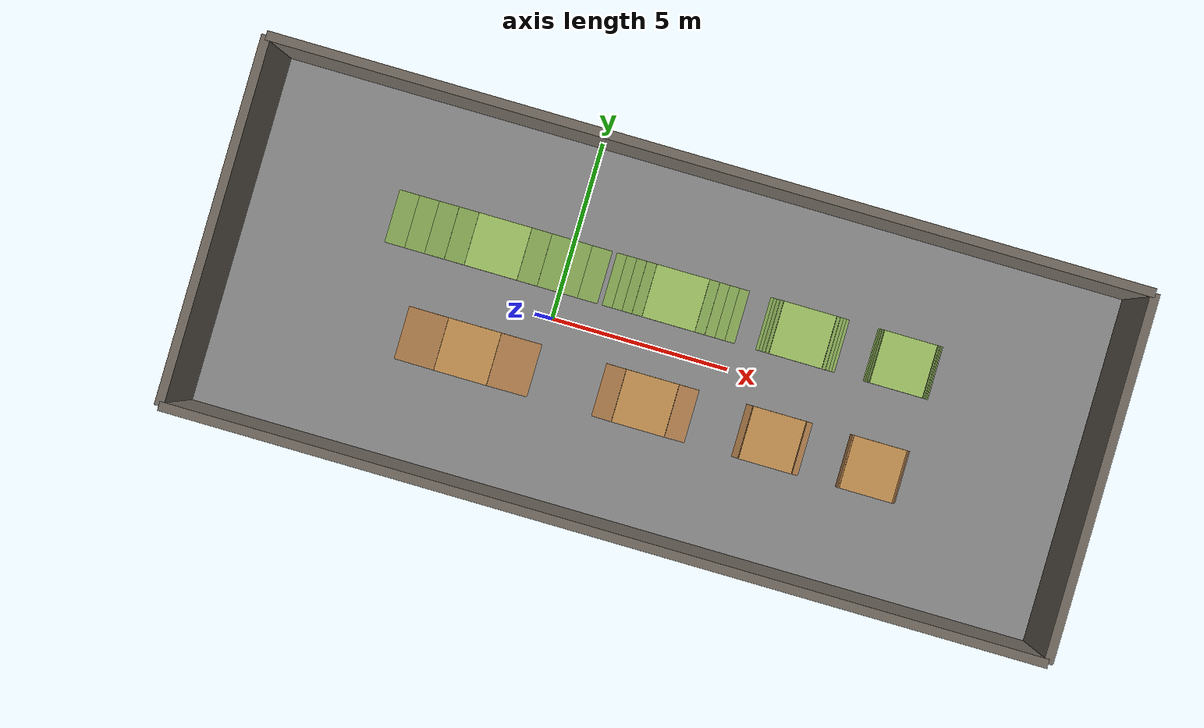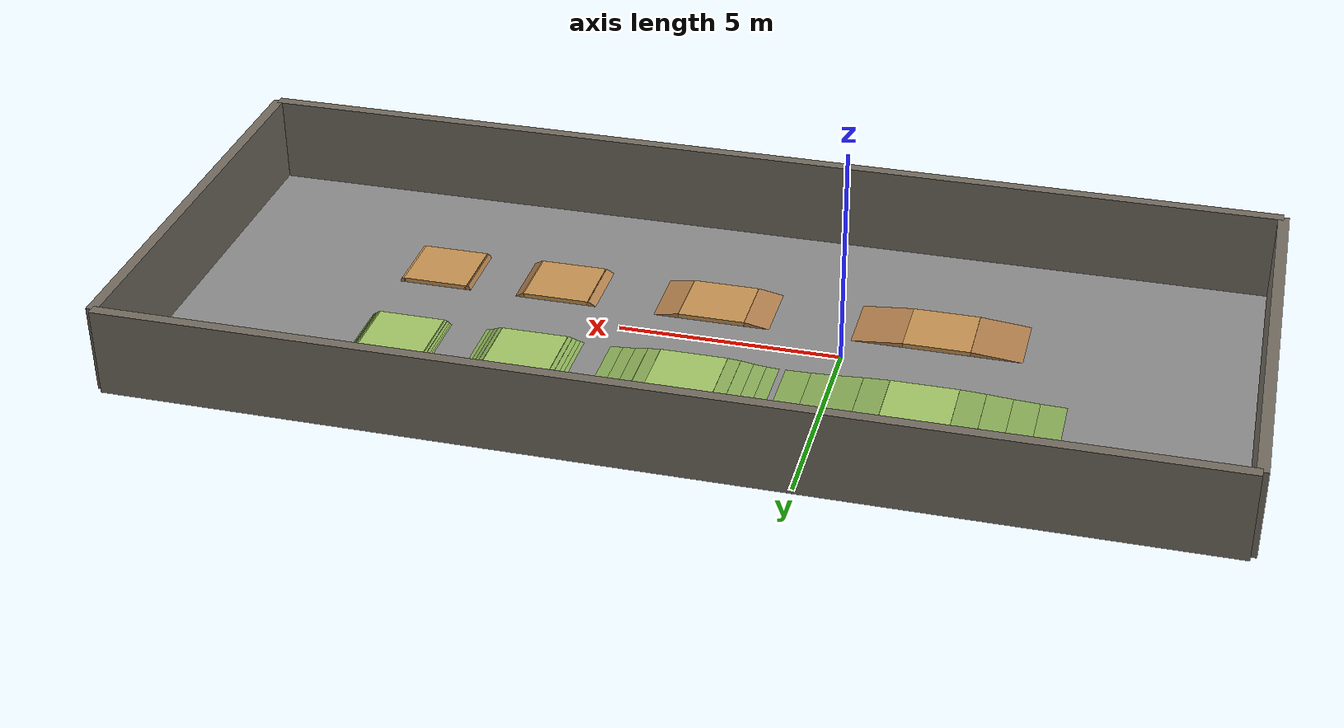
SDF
<?xml version="1.0" ?>
<sdf version="1.6">
  <world name="hill_placement">
    <gravity>0 0 -9.80511</gravity>
    <magnetic_field>6.0e-6 2.3e-5 -4.2e-5</magnetic_field>
    <atmosphere type="adiabatic" />
    <!-- /clock の更新粒度を上げるため、physics step を 1ms 基準に固定する。 -->
    <physics type="ode">
      <real_time_update_rate>1000</real_time_update_rate>
      <max_step_size>0.001</max_step_size>
      <real_time_factor>1.0</real_time_factor>
    </physics>

    <light name="sun" type="directional">
      <cast_shadows>true</cast_shadows>
      <pose>0 0 10 0 0 0</pose>
      <diffuse>0.8 0.8 0.8 1</diffuse>
      <specular>0.2 0.2 0.2 1</specular>
      <attenuation>
        <range>1000</range>
        <constant>0.9</constant>
        <linear>0.01</linear>
        <quadratic>0.001</quadratic>
      </attenuation>
      <direction>-0.5 0.1 -0.9</direction>
    </light>

    <model name="flat_floor">
      <static>true</static>
      <!-- 8個の丘を前方へ並べられるよう、既存worldよりX方向を広くした平坦床を用意する。 -->
      <link name="link">
        <collision name="collision">
          <pose>3.0 0 -0.01 0 0 0</pose>
          <geometry>
            <box><size>24.0 10.0 0.02</size></box>
          </geometry>
        </collision>
        <visual name="visual">
          <pose>3.0 0 -0.01 0 0 0</pose>
          <geometry>
            <box><size>24.0 10.0 0.02</size></box>
          </geometry>
          <material>
            <ambient>0.30 0.30 0.30 1</ambient>
            <diffuse>0.55 0.55 0.55 1</diffuse>
          </material>
        </visual>
      </link>
    </model>

    <model name="hill_constant_5deg">
      <static>true</static>
      <pose>-1.9742 -1.5 0 0 0 0</pose>
      <!-- 5度の一定勾配丘は厚みを持つ傾斜直方体で側面を兼ね、上面高さ10cmを維持する。 -->
      <link name="up_slope"><pose>-1.3215 0 0.0002 0 -0.087266 0</pose><collision name="collision"><geometry><box><size>1.1474 1.50 0.10</size></box></geometry></collision><visual name="visual"><geometry><box><size>1.1474 1.50 0.10</size></box></geometry><material><ambient>0.42 0.30 0.18 1</ambient><diffuse>0.70 0.50 0.30 1</diffuse></material></visual></link>
      <link name="top"><pose>0.0000 0 0.0500 0 0.000000 0</pose><collision name="collision"><geometry><box><size>1.5000 1.50 0.10</size></box></geometry></collision><visual name="visual"><geometry><box><size>1.5000 1.50 0.10</size></box></geometry><material><ambient>0.48 0.36 0.20 1</ambient><diffuse>0.78 0.58 0.32 1</diffuse></material></visual></link>
      <link name="down_slope"><pose>1.3215 0 0.0002 0 0.087266 0</pose><collision name="collision"><geometry><box><size>1.1474 1.50 0.10</size></box></geometry></collision><visual name="visual"><geometry><box><size>1.1474 1.50 0.10</size></box></geometry><material><ambient>0.42 0.30 0.18 1</ambient><diffuse>0.70 0.50 0.30 1</diffuse></material></visual></link>
    </model>

    <model name="hill_smooth_5deg">
      <static>true</static>
      <pose>-1.9742 1.5 0 0 0 0</pose>
      <!-- 5度のなだらか接続丘は厚みを持つ分割傾斜直方体で接地側と上面側の勾配を緩和する。 -->
      <link name="up_slope_low"><pose>-2.7536 0 -0.0437 0 -0.021817 0</pose><collision name="collision"><geometry><box><size>0.5726 1.50 0.10</size></box></geometry></collision><visual name="visual"><geometry><box><size>0.5726 1.50 0.10</size></box></geometry><material><ambient>0.34 0.42 0.20 1</ambient><diffuse>0.54 0.68 0.34 1</diffuse></material></visual></link>
      <link name="up_slope_mid"><pose>-2.1811 0 -0.0250 0 -0.043633 0</pose><collision name="collision"><geometry><box><size>0.5730 1.50 0.10</size></box></geometry></collision><visual name="visual"><geometry><box><size>0.5730 1.50 0.10</size></box></geometry><material><ambient>0.34 0.42 0.20 1</ambient><diffuse>0.54 0.68 0.34 1</diffuse></material></visual></link>
      <link name="up_slope_high"><pose>-1.6087 0 0.0064 0 -0.065450 0</pose><collision name="collision"><geometry><box><size>0.5737 1.50 0.10</size></box></geometry></collision><visual name="visual"><geometry><box><size>0.5737 1.50 0.10</size></box></geometry><material><ambient>0.34 0.42 0.20 1</ambient><diffuse>0.54 0.68 0.34 1</diffuse></material></visual></link>
      <link name="up_slope_top"><pose>-1.0362 0 0.0376 0 -0.043633 0</pose><collision name="collision"><geometry><box><size>0.5730 1.50 0.10</size></box></geometry></collision><visual name="visual"><geometry><box><size>0.5730 1.50 0.10</size></box></geometry><material><ambient>0.34 0.42 0.20 1</ambient><diffuse>0.54 0.68 0.34 1</diffuse></material></visual></link>
      <link name="top"><pose>0.0000 0 0.0500 0 0.000000 0</pose><collision name="collision"><geometry><box><size>1.5000 1.50 0.10</size></box></geometry></collision><visual name="visual"><geometry><box><size>1.5000 1.50 0.10</size></box></geometry><material><ambient>0.40 0.50 0.24 1</ambient><diffuse>0.64 0.78 0.40 1</diffuse></material></visual></link>
      <link name="down_slope_top"><pose>1.0362 0 0.0376 0 0.043633 0</pose><collision name="collision"><geometry><box><size>0.5730 1.50 0.10</size></box></geometry></collision><visual name="visual"><geometry><box><size>0.5730 1.50 0.10</size></box></geometry><material><ambient>0.34 0.42 0.20 1</ambient><diffuse>0.54 0.68 0.34 1</diffuse></material></visual></link>
      <link name="down_slope_high"><pose>1.6087 0 0.0064 0 0.065450 0</pose><collision name="collision"><geometry><box><size>0.5737 1.50 0.10</size></box></geometry></collision><visual name="visual"><geometry><box><size>0.5737 1.50 0.10</size></box></geometry><material><ambient>0.34 0.42 0.20 1</ambient><diffuse>0.54 0.68 0.34 1</diffuse></material></visual></link>
      <link name="down_slope_mid"><pose>2.1811 0 -0.0250 0 0.043633 0</pose><collision name="collision"><geometry><box><size>0.5730 1.50 0.10</size></box></geometry></collision><visual name="visual"><geometry><box><size>0.5730 1.50 0.10</size></box></geometry><material><ambient>0.34 0.42 0.20 1</ambient><diffuse>0.54 0.68 0.34 1</diffuse></material></visual></link>
      <link name="down_slope_low"><pose>2.7536 0 -0.0437 0 0.021817 0</pose><collision name="collision"><geometry><box><size>0.5726 1.50 0.10</size></box></geometry></collision><visual name="visual"><geometry><box><size>0.5726 1.50 0.10</size></box></geometry><material><ambient>0.34 0.42 0.20 1</ambient><diffuse>0.54 0.68 0.34 1</diffuse></material></visual></link>
    </model>

    <model name="hill_constant_10deg">
      <static>true</static>
      <pose>3.0954 -1.5 0 0 0 0</pose>
      <!-- 10度の一定勾配丘は厚みを持つ傾斜直方体で側面を兼ね、上面高さ10cmを維持する。 -->
      <link name="up_slope"><pose>-1.0336 0 0.0008 0 -0.174533 0</pose><collision name="collision"><geometry><box><size>0.5759 1.50 0.10</size></box></geometry></collision><visual name="visual"><geometry><box><size>0.5759 1.50 0.10</size></box></geometry><material><ambient>0.42 0.30 0.18 1</ambient><diffuse>0.70 0.50 0.30 1</diffuse></material></visual></link>
      <link name="top"><pose>0.0000 0 0.0500 0 0.000000 0</pose><collision name="collision"><geometry><box><size>1.5000 1.50 0.10</size></box></geometry></collision><visual name="visual"><geometry><box><size>1.5000 1.50 0.10</size></box></geometry><material><ambient>0.48 0.36 0.20 1</ambient><diffuse>0.78 0.58 0.32 1</diffuse></material></visual></link>
      <link name="down_slope"><pose>1.0336 0 0.0008 0 0.174533 0</pose><collision name="collision"><geometry><box><size>0.5759 1.50 0.10</size></box></geometry></collision><visual name="visual"><geometry><box><size>0.5759 1.50 0.10</size></box></geometry><material><ambient>0.42 0.30 0.18 1</ambient><diffuse>0.70 0.50 0.30 1</diffuse></material></visual></link>
    </model>

    <model name="hill_smooth_10deg">
      <static>true</static>
      <pose>3.0954 1.5 0 0 0 0</pose>
      <!-- 10度のなだらか接続丘は厚みを持つ分割傾斜直方体で接地側と上面側の勾配を緩和する。 -->
      <link name="up_slope_low"><pose>-1.7492 0 -0.0437 0 -0.043633 0</pose><collision name="collision"><geometry><box><size>0.2857 1.50 0.10</size></box></geometry></collision><visual name="visual"><geometry><box><size>0.2857 1.50 0.10</size></box></geometry><material><ambient>0.34 0.42 0.20 1</ambient><diffuse>0.54 0.68 0.34 1</diffuse></material></visual></link>
      <link name="up_slope_mid"><pose>-1.4637 0 -0.0249 0 -0.087266 0</pose><collision name="collision"><geometry><box><size>0.2866 1.50 0.10</size></box></geometry></collision><visual name="visual"><geometry><box><size>0.2866 1.50 0.10</size></box></geometry><material><ambient>0.34 0.42 0.20 1</ambient><diffuse>0.54 0.68 0.34 1</diffuse></material></visual></link>
      <link name="up_slope_high"><pose>-1.1782 0 0.0067 0 -0.130900 0</pose><collision name="collision"><geometry><box><size>0.2879 1.50 0.10</size></box></geometry></collision><visual name="visual"><geometry><box><size>0.2879 1.50 0.10</size></box></geometry><material><ambient>0.34 0.42 0.20 1</ambient><diffuse>0.54 0.68 0.34 1</diffuse></material></visual></link>
      <link name="up_slope_top"><pose>-0.8927 0 0.0377 0 -0.087266 0</pose><collision name="collision"><geometry><box><size>0.2866 1.50 0.10</size></box></geometry></collision><visual name="visual"><geometry><box><size>0.2866 1.50 0.10</size></box></geometry><material><ambient>0.34 0.42 0.20 1</ambient><diffuse>0.54 0.68 0.34 1</diffuse></material></visual></link>
      <link name="top"><pose>0.0000 0 0.0500 0 0.000000 0</pose><collision name="collision"><geometry><box><size>1.5000 1.50 0.10</size></box></geometry></collision><visual name="visual"><geometry><box><size>1.5000 1.50 0.10</size></box></geometry><material><ambient>0.40 0.50 0.24 1</ambient><diffuse>0.64 0.78 0.40 1</diffuse></material></visual></link>
      <link name="down_slope_top"><pose>0.8927 0 0.0377 0 0.087266 0</pose><collision name="collision"><geometry><box><size>0.2866 1.50 0.10</size></box></geometry></collision><visual name="visual"><geometry><box><size>0.2866 1.50 0.10</size></box></geometry><material><ambient>0.34 0.42 0.20 1</ambient><diffuse>0.54 0.68 0.34 1</diffuse></material></visual></link>
      <link name="down_slope_high"><pose>1.1782 0 0.0067 0 0.130900 0</pose><collision name="collision"><geometry><box><size>0.2879 1.50 0.10</size></box></geometry></collision><visual name="visual"><geometry><box><size>0.2879 1.50 0.10</size></box></geometry><material><ambient>0.34 0.42 0.20 1</ambient><diffuse>0.54 0.68 0.34 1</diffuse></material></visual></link>
      <link name="down_slope_mid"><pose>1.4637 0 -0.0249 0 0.087266 0</pose><collision name="collision"><geometry><box><size>0.2866 1.50 0.10</size></box></geometry></collision><visual name="visual"><geometry><box><size>0.2866 1.50 0.10</size></box></geometry><material><ambient>0.34 0.42 0.20 1</ambient><diffuse>0.54 0.68 0.34 1</diffuse></material></visual></link>
      <link name="down_slope_low"><pose>1.7492 0 -0.0437 0 0.043633 0</pose><collision name="collision"><geometry><box><size>0.2857 1.50 0.10</size></box></geometry></collision><visual name="visual"><geometry><box><size>0.2857 1.50 0.10</size></box></geometry><material><ambient>0.34 0.42 0.20 1</ambient><diffuse>0.54 0.68 0.34 1</diffuse></material></visual></link>
    </model>

    <model name="hill_constant_30deg">
      <static>true</static>
      <pose>6.7174 -1.5 0 0 0 0</pose>
      <!-- 30度の一定勾配丘は厚みを持つ傾斜直方体で側面を兼ね、上面高さ10cmを維持する。 -->
      <link name="up_slope"><pose>-0.8366 0 0.0067 0 -0.523599 0</pose><collision name="collision"><geometry><box><size>0.2000 1.50 0.10</size></box></geometry></collision><visual name="visual"><geometry><box><size>0.2000 1.50 0.10</size></box></geometry><material><ambient>0.42 0.30 0.18 1</ambient><diffuse>0.70 0.50 0.30 1</diffuse></material></visual></link>
      <link name="top"><pose>0.0000 0 0.0500 0 0.000000 0</pose><collision name="collision"><geometry><box><size>1.5000 1.50 0.10</size></box></geometry></collision><visual name="visual"><geometry><box><size>1.5000 1.50 0.10</size></box></geometry><material><ambient>0.48 0.36 0.20 1</ambient><diffuse>0.78 0.58 0.32 1</diffuse></material></visual></link>
      <link name="down_slope"><pose>0.8366 0 0.0067 0 0.523599 0</pose><collision name="collision"><geometry><box><size>0.2000 1.50 0.10</size></box></geometry></collision><visual name="visual"><geometry><box><size>0.2000 1.50 0.10</size></box></geometry><material><ambient>0.42 0.30 0.18 1</ambient><diffuse>0.70 0.50 0.30 1</diffuse></material></visual></link>
    </model>

    <model name="hill_smooth_30deg">
      <static>true</static>
      <pose>6.7174 1.5 0 0 0 0</pose>
      <!-- 30度のなだらか接続丘は厚みを持つ分割傾斜直方体で接地側と上面側の勾配を緩和する。 -->
      <link name="up_slope_low"><pose>-1.0735 0 -0.0435 0 -0.130900 0</pose><collision name="collision"><geometry><box><size>0.0932 1.50 0.10</size></box></geometry></collision><visual name="visual"><geometry><box><size>0.0932 1.50 0.10</size></box></geometry><material><ambient>0.34 0.42 0.20 1</ambient><diffuse>0.54 0.68 0.34 1</diffuse></material></visual></link>
      <link name="up_slope_mid"><pose>-0.9811 0 -0.0237 0 -0.261799 0</pose><collision name="collision"><geometry><box><size>0.0957 1.50 0.10</size></box></geometry></collision><visual name="visual"><geometry><box><size>0.0957 1.50 0.10</size></box></geometry><material><ambient>0.34 0.42 0.20 1</ambient><diffuse>0.54 0.68 0.34 1</diffuse></material></visual></link>
      <link name="up_slope_high"><pose>-0.8887 0 0.0099 0 -0.392699 0</pose><collision name="collision"><geometry><box><size>0.1001 1.50 0.10</size></box></geometry></collision><visual name="visual"><geometry><box><size>0.1001 1.50 0.10</size></box></geometry><material><ambient>0.34 0.42 0.20 1</ambient><diffuse>0.54 0.68 0.34 1</diffuse></material></visual></link>
      <link name="up_slope_top"><pose>-0.7962 0 0.0393 0 -0.261799 0</pose><collision name="collision"><geometry><box><size>0.0957 1.50 0.10</size></box></geometry></collision><visual name="visual"><geometry><box><size>0.0957 1.50 0.10</size></box></geometry><material><ambient>0.34 0.42 0.20 1</ambient><diffuse>0.54 0.68 0.34 1</diffuse></material></visual></link>
      <link name="top"><pose>0.0000 0 0.0500 0 0.000000 0</pose><collision name="collision"><geometry><box><size>1.5000 1.50 0.10</size></box></geometry></collision><visual name="visual"><geometry><box><size>1.5000 1.50 0.10</size></box></geometry><material><ambient>0.40 0.50 0.24 1</ambient><diffuse>0.64 0.78 0.40 1</diffuse></material></visual></link>
      <link name="down_slope_top"><pose>0.7962 0 0.0393 0 0.261799 0</pose><collision name="collision"><geometry><box><size>0.0957 1.50 0.10</size></box></geometry></collision><visual name="visual"><geometry><box><size>0.0957 1.50 0.10</size></box></geometry><material><ambient>0.34 0.42 0.20 1</ambient><diffuse>0.54 0.68 0.34 1</diffuse></material></visual></link>
      <link name="down_slope_high"><pose>0.8887 0 0.0099 0 0.392699 0</pose><collision name="collision"><geometry><box><size>0.1001 1.50 0.10</size></box></geometry></collision><visual name="visual"><geometry><box><size>0.1001 1.50 0.10</size></box></geometry><material><ambient>0.34 0.42 0.20 1</ambient><diffuse>0.54 0.68 0.34 1</diffuse></material></visual></link>
      <link name="down_slope_mid"><pose>0.9811 0 -0.0237 0 0.261799 0</pose><collision name="collision"><geometry><box><size>0.0957 1.50 0.10</size></box></geometry></collision><visual name="visual"><geometry><box><size>0.0957 1.50 0.10</size></box></geometry><material><ambient>0.34 0.42 0.20 1</ambient><diffuse>0.54 0.68 0.34 1</diffuse></material></visual></link>
      <link name="down_slope_low"><pose>1.0735 0 -0.0435 0 0.130900 0</pose><collision name="collision"><geometry><box><size>0.0932 1.50 0.10</size></box></geometry></collision><visual name="visual"><geometry><box><size>0.0932 1.50 0.10</size></box></geometry><material><ambient>0.34 0.42 0.20 1</ambient><diffuse>0.54 0.68 0.34 1</diffuse></material></visual></link>
    </model>

    <model name="hill_constant_60deg">
      <static>true</static>
      <pose>9.588 -1.5 0 0 0 0</pose>
      <!-- 60度の一定勾配丘は厚みを持つ傾斜直方体で側面を兼ね、上面高さ10cmを維持する。 -->
      <link name="up_slope"><pose>-0.7789 0 0.0250 0 -1.047198 0</pose><collision name="collision"><geometry><box><size>0.1155 1.50 0.10</size></box></geometry></collision><visual name="visual"><geometry><box><size>0.1155 1.50 0.10</size></box></geometry><material><ambient>0.42 0.30 0.18 1</ambient><diffuse>0.70 0.50 0.30 1</diffuse></material></visual></link>
      <link name="top"><pose>0.0000 0 0.0500 0 0.000000 0</pose><collision name="collision"><geometry><box><size>1.5000 1.50 0.10</size></box></geometry></collision><visual name="visual"><geometry><box><size>1.5000 1.50 0.10</size></box></geometry><material><ambient>0.48 0.36 0.20 1</ambient><diffuse>0.78 0.58 0.32 1</diffuse></material></visual></link>
      <link name="down_slope"><pose>0.7789 0 0.0250 0 1.047198 0</pose><collision name="collision"><geometry><box><size>0.1155 1.50 0.10</size></box></geometry></collision><visual name="visual"><geometry><box><size>0.1155 1.50 0.10</size></box></geometry><material><ambient>0.42 0.30 0.18 1</ambient><diffuse>0.70 0.50 0.30 1</diffuse></material></visual></link>
    </model>

    <model name="hill_smooth_60deg">
      <static>true</static>
      <pose>9.588 1.5 0 0 0 0</pose>
      <!-- 60度のなだらか接続丘は厚みを持つ分割傾斜直方体で接地側と上面側の勾配を緩和する。 -->
      <link name="up_slope_low"><pose>-0.8945 0 -0.0428 0 -0.261799 0</pose><collision name="collision"><geometry><box><size>0.0427 1.50 0.10</size></box></geometry></collision><visual name="visual"><geometry><box><size>0.0427 1.50 0.10</size></box></geometry><material><ambient>0.34 0.42 0.20 1</ambient><diffuse>0.54 0.68 0.34 1</diffuse></material></visual></link>
      <link name="up_slope_mid"><pose>-0.8532 0 -0.0203 0 -0.523599 0</pose><collision name="collision"><geometry><box><size>0.0477 1.50 0.10</size></box></geometry></collision><visual name="visual"><geometry><box><size>0.0477 1.50 0.10</size></box></geometry><material><ambient>0.34 0.42 0.20 1</ambient><diffuse>0.54 0.68 0.34 1</diffuse></material></visual></link>
      <link name="up_slope_high"><pose>-0.8119 0 0.0202 0 -0.785398 0</pose><collision name="collision"><geometry><box><size>0.0584 1.50 0.10</size></box></geometry></collision><visual name="visual"><geometry><box><size>0.0584 1.50 0.10</size></box></geometry><material><ambient>0.34 0.42 0.20 1</ambient><diffuse>0.54 0.68 0.34 1</diffuse></material></visual></link>
      <link name="up_slope_top"><pose>-0.7706 0 0.0448 0 -0.523599 0</pose><collision name="collision"><geometry><box><size>0.0477 1.50 0.10</size></box></geometry></collision><visual name="visual"><geometry><box><size>0.0477 1.50 0.10</size></box></geometry><material><ambient>0.34 0.42 0.20 1</ambient><diffuse>0.54 0.68 0.34 1</diffuse></material></visual></link>
      <link name="top"><pose>0.0000 0 0.0500 0 0.000000 0</pose><collision name="collision"><geometry><box><size>1.5000 1.50 0.10</size></box></geometry></collision><visual name="visual"><geometry><box><size>1.5000 1.50 0.10</size></box></geometry><material><ambient>0.40 0.50 0.24 1</ambient><diffuse>0.64 0.78 0.40 1</diffuse></material></visual></link>
      <link name="down_slope_top"><pose>0.7706 0 0.0448 0 0.523599 0</pose><collision name="collision"><geometry><box><size>0.0477 1.50 0.10</size></box></geometry></collision><visual name="visual"><geometry><box><size>0.0477 1.50 0.10</size></box></geometry><material><ambient>0.34 0.42 0.20 1</ambient><diffuse>0.54 0.68 0.34 1</diffuse></material></visual></link>
      <link name="down_slope_high"><pose>0.8119 0 0.0202 0 0.785398 0</pose><collision name="collision"><geometry><box><size>0.0584 1.50 0.10</size></box></geometry></collision><visual name="visual"><geometry><box><size>0.0584 1.50 0.10</size></box></geometry><material><ambient>0.34 0.42 0.20 1</ambient><diffuse>0.54 0.68 0.34 1</diffuse></material></visual></link>
      <link name="down_slope_mid"><pose>0.8532 0 -0.0203 0 0.523599 0</pose><collision name="collision"><geometry><box><size>0.0477 1.50 0.10</size></box></geometry></collision><visual name="visual"><geometry><box><size>0.0477 1.50 0.10</size></box></geometry><material><ambient>0.34 0.42 0.20 1</ambient><diffuse>0.54 0.68 0.34 1</diffuse></material></visual></link>
      <link name="down_slope_low"><pose>0.8945 0 -0.0428 0 0.261799 0</pose><collision name="collision"><geometry><box><size>0.0427 1.50 0.10</size></box></geometry></collision><visual name="visual"><geometry><box><size>0.0427 1.50 0.10</size></box></geometry><material><ambient>0.34 0.42 0.20 1</ambient><diffuse>0.54 0.68 0.34 1</diffuse></material></visual></link>
    </model>

    <model name="dock_wall_north">
      <static>true</static>
      <pose>3.0 5.0 1.0 0 0 0</pose>
      <link name="link">
        <!-- 既存worldと同じ高さ・厚みの外壁で、拡張した床外周を閉じる。 -->
        <collision name="collision"><geometry><box><size>24.0 0.25 2.0</size></box></geometry></collision>
        <visual name="visual"><geometry><box><size>24.0 0.25 2.0</size></box></geometry><material><ambient>0.45 0.42 0.38 1</ambient><diffuse>0.45 0.42 0.38 1</diffuse></material></visual>
      </link>
    </model>

    <model name="dock_wall_south">
      <static>true</static>
      <pose>3.0 -5.0 1.0 0 0 0</pose>
      <link name="link">
        <collision name="collision"><geometry><box><size>24.0 0.25 2.0</size></box></geometry></collision>
        <visual name="visual"><geometry><box><size>24.0 0.25 2.0</size></box></geometry><material><ambient>0.45 0.42 0.38 1</ambient><diffuse>0.45 0.42 0.38 1</diffuse></material></visual>
      </link>
    </model>

    <model name="dock_wall_east">
      <static>true</static>
      <pose>15.0 0 1.0 0 0 0</pose>
      <link name="link">
        <collision name="collision"><geometry><box><size>0.25 10.0 2.0</size></box></geometry></collision>
        <visual name="visual"><geometry><box><size>0.25 10.0 2.0</size></box></geometry><material><ambient>0.45 0.42 0.38 1</ambient><diffuse>0.45 0.42 0.38 1</diffuse></material></visual>
      </link>
    </model>

    <model name="dock_wall_west">
      <static>true</static>
      <pose>-9.0 0 1.0 0 0 0</pose>
      <link name="link">
        <collision name="collision"><geometry><box><size>0.25 10.0 2.0</size></box></geometry></collision>
        <visual name="visual"><geometry><box><size>0.25 10.0 2.0</size></box></geometry><material><ambient>0.45 0.42 0.38 1</ambient><diffuse>0.45 0.42 0.38 1</diffuse></material></visual>
      </link>
    </model>

    <model name="ceiling">
      <static>true</static>
      <pose>3.0 0 2.05 0 0 0</pose>
      <link name="link">
        <!-- 天井は既存worldと同様にLiDAR ray用の衝突を持たせ、表示だけ透明にする。 -->
        <collision name="collision"><geometry><box><size>24.0 10.25 0.10</size></box></geometry></collision>
        <visual name="visual">
          <geometry><box><size>24.0 10.25 0.10</size></box></geometry>
          <material><ambient>0.35 0.35 0.38 0</ambient><diffuse>0.35 0.35 0.38 0</diffuse></material>
          <transparency>1.0</transparency>
        </visual>
      </link>
    </model>
  </world>
</sdf>
